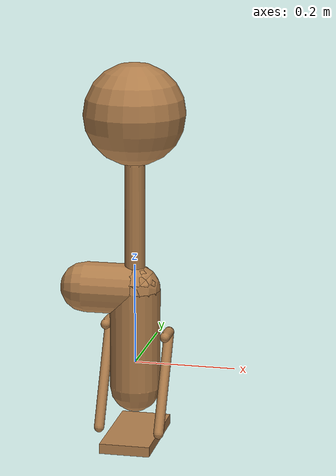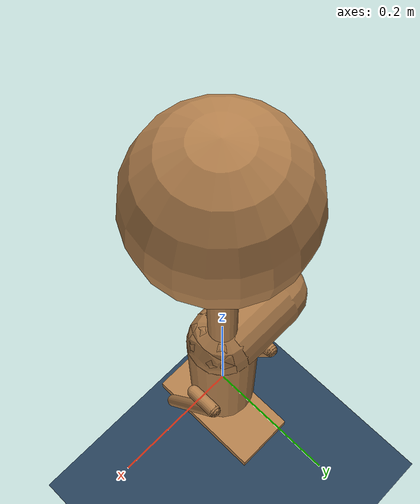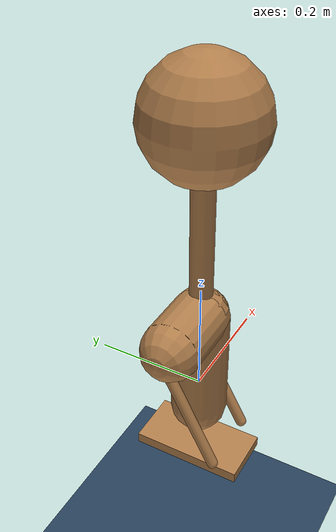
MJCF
<mujoco model="DAM leg">
  <include file="../common.xml"/>
  <include file="leg.xml" />

  <size memory="1M"/>

  <custom>
    <numeric name="agent_planner" data="2" />
    <numeric name="agent_horizon" data="0.5" />
    <numeric name="agent_timestep" data="0.01" />
    <numeric name="agent_integrator" data="3"/>
    <numeric name="sampling_sample_width" data="0.01" />
    <numeric name="sampling_control_width" data="0.015" />
    <numeric name="sampling_spline_points" data="10" />
    <numeric name="sampling_exploration" data="0.5" />
    <numeric name="gradient_spline_points" data="10" />
    <numeric name="residual_Goal" data="0.0 -1.5 1.5" />
  </custom>

  <sensor>
    <user name="Vertical" dim="1" user="0 1.0 0 10.0"/>
    <user name="Centered" dim="1" user="0 1.0 0 10.0"/>
    <user name="Velocity" dim="4" user="0 0.1 0 10.0"/>
    <user name="Control" dim="3" user="0 0.1 0 10.0"/>
    <framepos name="trace0" objtype="site" objname="tip"/>
    <framepos name="position" objtype="site" objname="tip"/>
    <framelinvel name="velocity" objtype="site" objname="tip"/>
  </sensor>
</mujoco>

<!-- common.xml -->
<mujoco>

    <visual>
        <headlight ambient=".4 .4 .4" diffuse=".8 .8 .8" specular="0.1 0.1 0.1"/>
        <map znear=".01"/>
        <quality shadowsize="2048"/>
        <global elevation="-15"/>
    </visual>

    <asset>
        <texture name="blue_grid" type="2d" builtin="checker" rgb1=".02 .14 .44" rgb2=".27 .55 1" width="300" height="300" mark="edge" markrgb="1 1 1"/>
        <material name="blue_grid" texture="blue_grid" texrepeat="1 1" texuniform="true" reflectance=".2"/>

        <texture name="grey_grid" type="2d" builtin="checker" rgb1=".26 .26 .26" rgb2=".6 .6 .6" width="300" height="300" mark="edge" markrgb="1 1 1"/>
        <material name="grey_grid" texture="grey_grid" texrepeat="1 1" texuniform="true" reflectance=".2"/>
        <texture name="skybox" type="skybox" builtin="gradient" rgb1=".66 .79 1" rgb2=".9 .91 .93" width="800" height="800"/>

        <material name="self" rgba=".7 .5 .3 1"/>
        <material name="self_default" rgba=".7 .5 .3 1"/>
        <material name="self_highlight" rgba="0 .5 .3 1"/>
        <material name="effector" rgba=".7 .4 .2 1"/>
        <material name="effector_default" rgba=".7 .4 .2 1"/>
        <material name="effector_highlight" rgba="0 .5 .3 1"/>
        <material name="decoration" rgba=".2 .6 .3 1"/>
        <material name="eye" rgba="0 .2 1 1"/>
        <material name="target" rgba=".6 .3 .3 1"/>
        <material name="target_default" rgba=".6 .3 .3 1"/>
        <material name="target_highlight" rgba=".6 .3 .3 .4"/>
        <material name="site" rgba=".5 .5 .5 .3"/>
    </asset>

    <size memory="1M"/>

    <statistic extent="0.4" center="0.3 0.1 0"/>

    <visual>
        <quality shadowsize="8192"/>
        <global azimuth="180" elevation="-30"/>
    </visual>

    <default>
        <geom friction="1.0"/>
    </default>

    <compiler angle="radian" autolimits="true"/>

    <asset>
        <mesh name="apple" file="../../shared_assets/apple/apple.obj" />
        <mesh name="apple_contact0" file="../../shared_assets/apple/contact0.stl"  />
        <mesh name="apple_contact1" file="../../shared_assets/apple/contact1.stl"  />

        <mesh name="doorknob" file="../../shared_assets/doorknob/doorknob.obj" />

        <mesh name="flashlight" file="../../shared_assets/flashlight/flashlight.obj" />
        <mesh name="flashlight_contact0" file="../../shared_assets/flashlight/contact0.stl"  />
        <mesh name="flashlight_contact1" file="../../shared_assets/flashlight/contact1.stl"  />

        <mesh name="hammer" file="../../shared_assets/hammer/hammer.obj" />
        <mesh name="hammer_contact0" file="../../shared_assets/hammer/contact0.stl"  />
        <mesh name="hammer_contact1" file="../../shared_assets/hammer/contact1.stl"  />

        <mesh name="phone" file="../../shared_assets/phone/phone.obj" />
        <mesh name="phone_contact0" file="../../shared_assets/phone/contact0.stl"  />
        <mesh name="phone_contact1" file="../../shared_assets/phone/contact1.stl"  />
        <mesh name="phone_contact2" file="../../shared_assets/phone/contact2.stl"  />

        <mesh name="stapler" file="../../shared_assets/stapler/stapler.obj" />
        <mesh name="stapler_contact0" file="../../shared_assets/stapler/contact0.stl"  />
        <mesh name="stapler_contact1" file="../../shared_assets/stapler/contact1.stl"  />
        <mesh name="stapler_contact2" file="../../shared_assets/stapler/contact2.stl"  />
        <mesh name="stapler_contact3" file="../../shared_assets/stapler/contact3.stl"  />
        <mesh name="stapler_contact4" file="../../shared_assets/stapler/contact4.stl"  />

        <mesh name="waterbottle" file="../../shared_assets/waterbottle/waterbottle.obj" />
        <mesh name="waterbottle_contact0" file="../../shared_assets/waterbottle/contact0.stl"  />
        <mesh name="waterbottle_contact1" file="../../shared_assets/waterbottle/contact1.stl"  />
    </asset>

</mujoco>

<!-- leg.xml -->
<mujoco model="dam_leg">
  <option timestep="0.002"/>
  <asset>
    <texture name="grid" type="2d" builtin="checker" width="512" height="512" rgb1=".1 .2 .3" rgb2=".2 .3 .4"/>
    <material name="grid" texture="grid" texrepeat="1 1" texuniform="true" reflectance=".2"/>
  </asset>

  <default>
    <joint type="hinge" damping=".1" stiffness="0.1" armature=".001" solimplimit="0 .99 .01"/>
    <geom material="self"/>
  </default>

  <worldbody>
    <!-- Ground -->
    <geom name="ground" type="plane" pos="0 0 -0.5" size="10 10 0.1"  material="grid"/>

    <!-- Torso -->
    <body name="torso" pos="0 0 0.5">
      <geom name="torso_geom" type="sphere" size="0.1" mass="2" />

      <!-- Thigh -->
      <body name="thigh" pos="0 0 -0.1">
        <joint name="hip" type="hinge" pos="0 0 0" axis="1 0 0" />
        <geom name="thigh_geom" type="capsule" fromto="0 0 0 0 0 -0.25" size="0.02" mass="0.05"/>

        <!-- Calf -->
        <body name="calf" pos="0 0 -0.25">
          <joint name="knee" type="hinge" pos="0 0 0" axis="1 0 0" />
          <geom name="calf_geom" type="capsule" fromto="0 0 0 0 0 -0.2" size="0.05" mass="0.35"/>

          <!-- calf motor1 -->
          <body name="calf_1" pos="-0.06 0 -0.075">
            <joint name="calf_1" type="hinge" pos="0 0 0" axis="-1 0 0" />
            <geom name="calf_1" type="capsule" fromto="0 0 0 0 0.04 0" size="0.01" mass="0.025"/>

          <!-- calf link 1 -->
          <body name="calf_link_1" pos="0 0.04 0">
            <joint name="calf_link_1x" type="hinge" pos="0 0 0" axis="1 0 0" />
            <joint name="calf_link_1y" type="hinge" pos="0 0 0" axis="0 1 0" />
            <geom name="calf_link_1" type="capsule" fromto="0 0 0 0 -0.1 -0.195" size="0.01" mass="0.025"/>
          </body>
          </body>

          <!-- calf motor2 -->
          <body name="calf_2" pos="0.06 0 -0.095">
            <joint name="calf_2" type="hinge" pos="0 0 0" axis="1 0 0" />
            <geom name="calf_2" type="capsule" fromto="0 0 0 0 0.04 0" size="0.01" mass="0.025"/>
          <!-- calf link 2 -->
          <body name="calf_link_2" pos="0 0.04 0">
            <joint name="calf_link_2x" type="hinge" pos="0 0 0" axis="1 0 0" />
            <joint name="calf_link_2y" type="hinge" pos="0 0 0" axis="0 1 0" />
            <geom name="calf_link_2" type="capsule" fromto="0 0 0 0 -0.1 -0.18" size="0.01" mass="0.025"/>
          </body>
          </body>

          <!-- Foot -->
          <body name="foot" pos="0 0 -0.3">
            <joint name="ankle1" type="hinge" pos="0 0 0" axis="1 0 0" />
            <joint name="ankle2" type="hinge" pos="0 0 0" axis="0 1 0" />
            <geom name="foot_geom" type="box" size="0.05 0.1 0.01" friction="0.9 0.5 0.5" mass="0.1"/>
            <site name="tip" pos="0 0 0"/>
          </body>
        </body>

        <!-- Knee Motor -->
        <body name="motor" pos="0 0 -0.25">
          <geom name="motor_geom" type="capsule" fromto="0 0 0 -0.1 0 0" size="0.05" mass="0.15"/>
        </body>
      </body>
    </body>
  </worldbody>

  <equality>
    <connect body1="calf_link_2" body2="foot" anchor="0.05 -0.1 -0.12"/>
    <connect body1="calf_link_1" body2="foot" anchor="-0.05 -0.1 -0.12"/>
  </equality>

  <actuator>
    <position name="knee" joint="knee" kp="10" ctrllimited="true" ctrlrange="-10 10"/>
    <position name="calf_1" joint="calf_1" kp="1" ctrllimited="true" ctrlrange="-10 10"/>
    <position name="calf_2" joint="calf_2" kp="1" ctrllimited="true" ctrlrange="-10 10"/>
  </actuator>
</mujoco>
